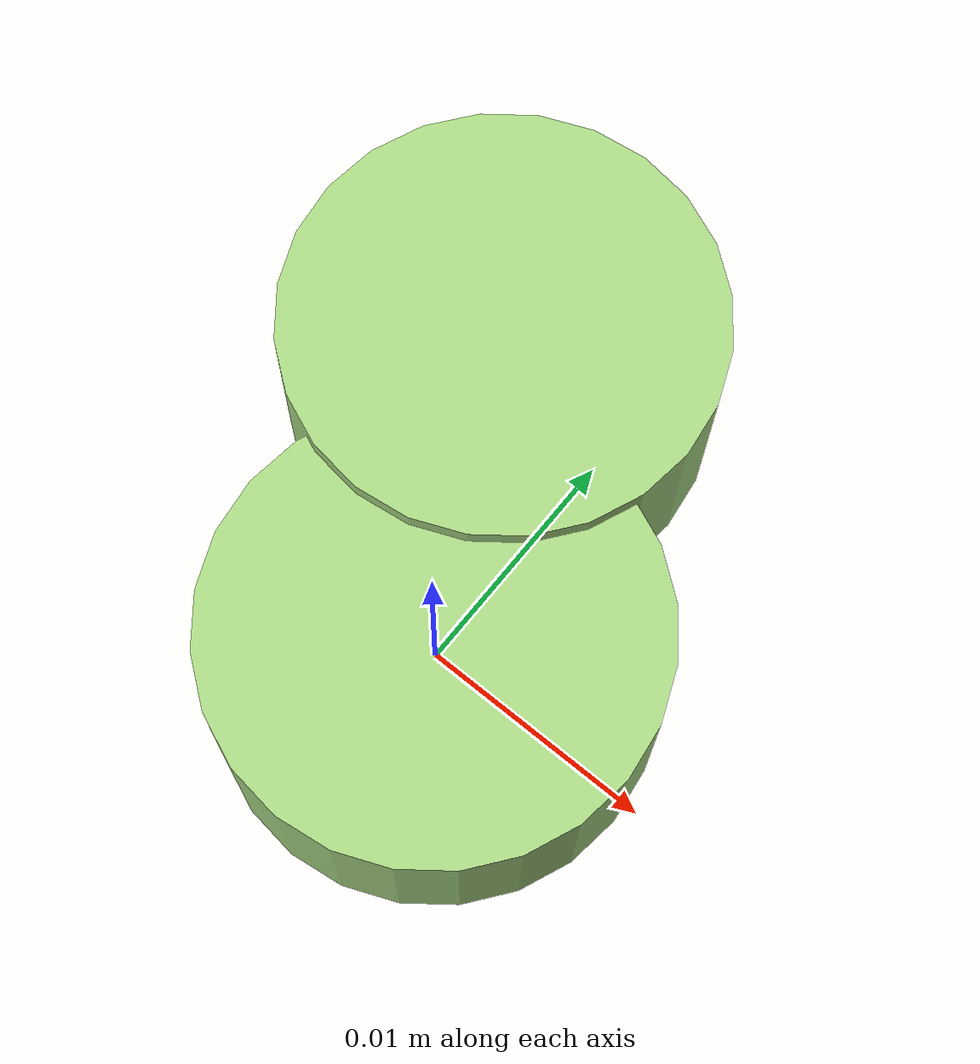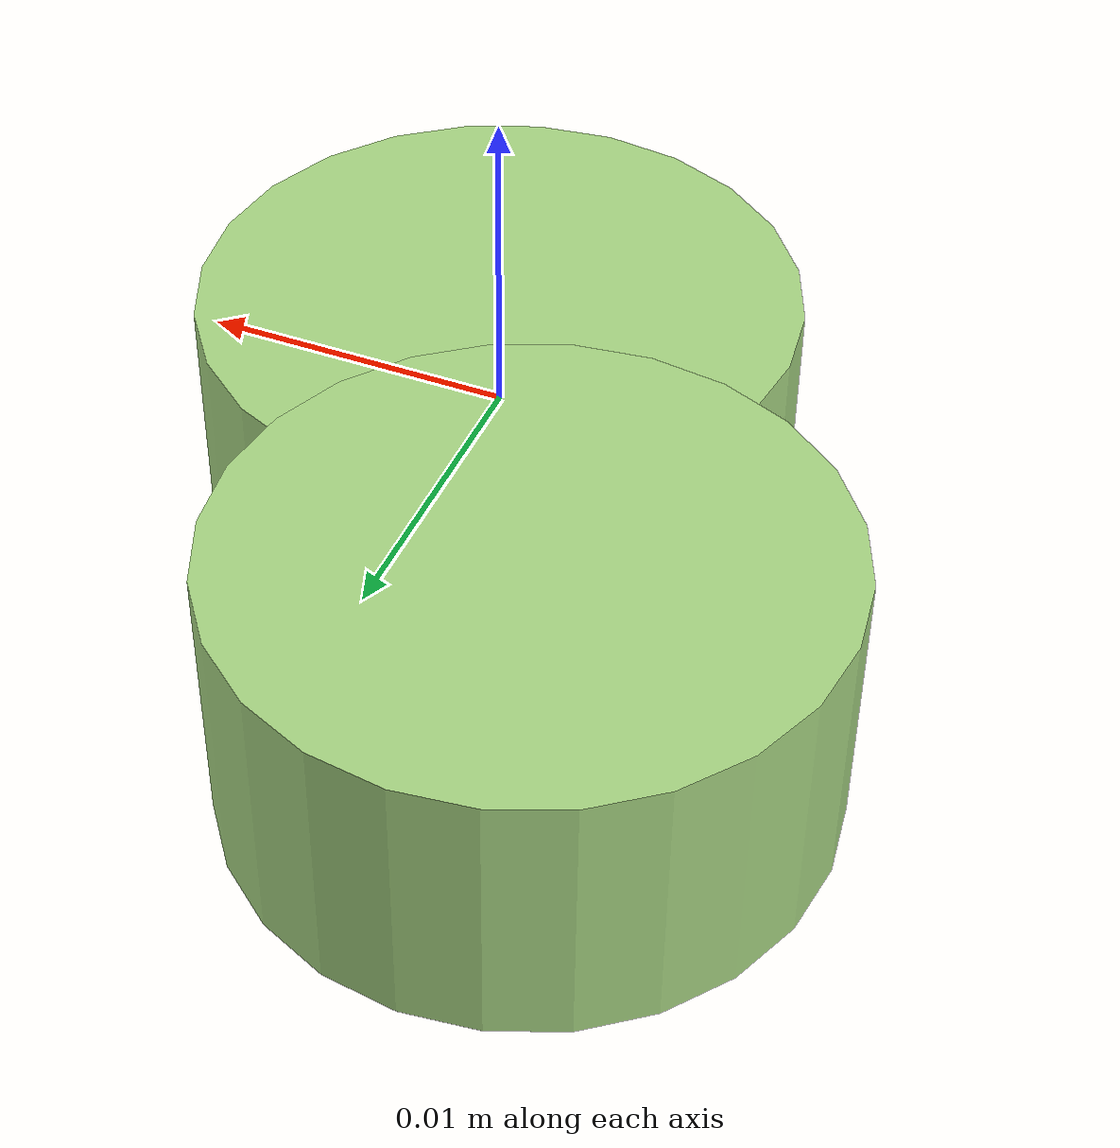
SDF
<?xml version="1.0" ?>
<!-- |    This document was autogenerated by xmacro from data/veggie_template/veggie_base.sdf.xacro  | -->
<!-- |    EDITING THIS FILE BY HAND IS NOT RECOMMENDED                                               | -->
<sdf version="1.8">
	<!-- Parameters -->
	<!-- Base -->
	<!-- Joint 0 -->
	<!-- Link 1 -->
	<!-- Joint 1 -->
	<!-- Link 2 -->
	<!-- Primitives -->
	<!-- All dimensions are half -->
	<!-- Object -->
	<model name="veggie">
		<!-- link0 -->
		<link name="link0">
			<inertial>
				<mass>0.002203750577010756</mass>
				<inertia>
					<ixx>5.948418789306032e-08</ixx>
					<ixy>0</ixy>
					<ixz>0</ixz>
					<iyy>5.948418789306032e-08</iyy>
					<iyz>0</iyz>
					<izz>9.428387721133026e-08</izz>
				</inertia>
			</inertial>
			<visual name="link0_visual">
				<pose>0 0 0 0 0 0</pose>
				<geometry>
					<cylinder>
						<radius>0.009250229229879824</radius>
						<length>0.008197974451200234</length>
					</cylinder>
				</geometry>
				<material>
					<ambient>0.659 0.839 0.514 1</ambient>
					<diffuse>0.659 0.839 0.514 1</diffuse>
					<specular>0 0 0 0</specular>
					<emissive>0 0 0 1</emissive>
				</material>
			</visual>
			<collision name="link0_collision">
				<pose>0 0 0 0 0 0 </pose>
				<geometry>
					<cylinder>
						<radius>0.009250229229879824</radius>
						<length>0.008197974451200234</length>
					</cylinder>
				</geometry>
			</collision>
		</link>
		<!-- link1 -->
		<joint name="joint0" type="fixed">
			<pose relative_to="link0">-0.00573673276813395 0.011260485880182006 0.0006124147625643701 0.0 0.0 0.0</pose>
			<parent>link0</parent>
			<child>link1</child>
		</joint>
		<link name="link1">
			<pose relative_to="joint0">0 0 0 0 0 0</pose>
			<inertial>
				<mass>0.002223236240114264</mass>
				<inertia>
					<ixx>5.9355070570736015e-08</ixx>
					<ixy>0</ixy>
					<ixz>0</ixz>
					<iyy>5.9355070570736015e-08</iyy>
					<iyz>0</iyz>
					<izz>9.10498774435622e-08</izz>
				</inertia>
			</inertial>
			<visual name="link1_visual">
				<pose>0 0 0 0 0 0</pose>
				<geometry>
					<cylinder>
						<radius>0.009050277047737471</radius>
						<length>0.008639944976948456</length>
					</cylinder>
				</geometry>
				<material>
					<ambient>0.659 0.839 0.514 1</ambient>
					<diffuse>0.659 0.839 0.514 1</diffuse>
					<specular>0 0 0 0</specular>
					<emissive>0 0 0 1</emissive>
				</material>
			</visual>
			<collision name="link1_collision">
				<pose>0 0 0 0 0 0 </pose>
				<geometry>
					<cylinder>
						<radius>0.009050277047737471</radius>
						<length>0.008639944976948456</length>
					</cylinder>
				</geometry>
			</collision>
		</link>
		<!-- link2 -->
	</model>
</sdf>
